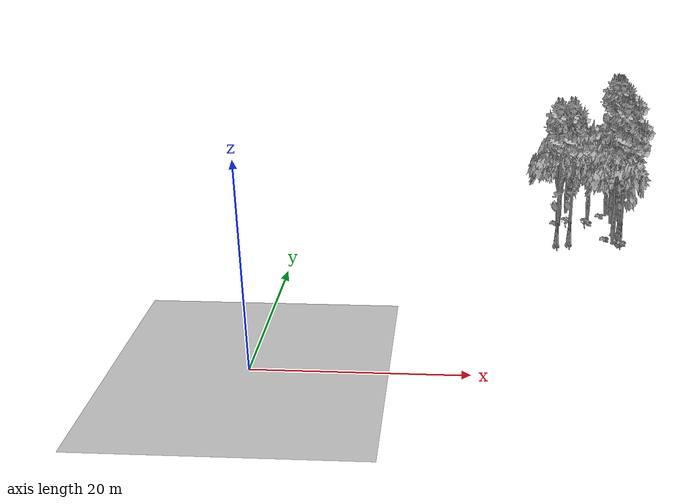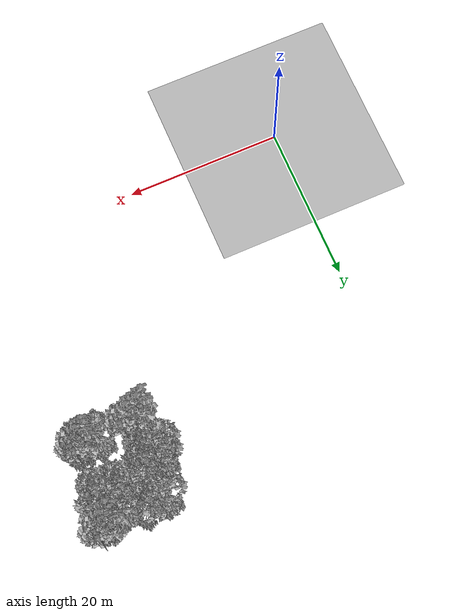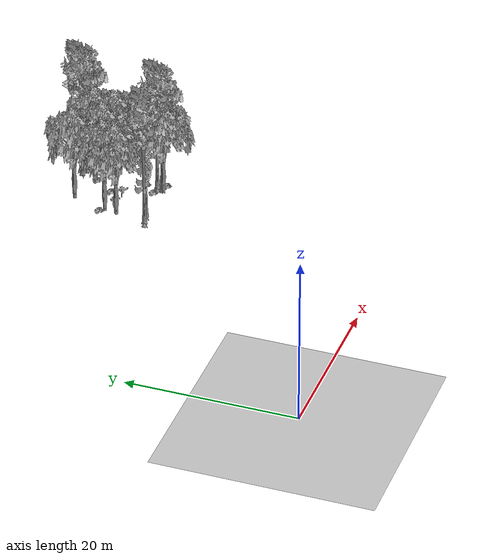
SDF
<sdf version="1.7">
 <world name="default">
  <model name="ground_plane">
   <static>1</static>
   <link name="link">
    <collision name="collision">
     <pose>-50 0 0 0 -0 0</pose>
     <geometry><plane><normal>0 0 1</normal><size>80 80</size></plane></geometry>
     <surface><contact><ode><min_depth>0.01</min_depth><max_vel>0</max_vel></ode></contact></surface>
    </collision>
    <visual name="grass">
     <cast_shadows>0</cast_shadows>
     <geometry>
      <mesh>
       <scale>0.46714285714285714 0.46714285714285714 0.1</scale>
       <uri>file://grass_plane/meshes/grass_plane.dae</uri>
      </mesh>
     </geometry>
    </visual>
   </link>
  </model>
  <model name="Tree 76">
   <static>1</static>
   <pose>37.84078261592019 39.57574011754254 0 1.57079 -0 0</pose>
   <link name="link">
    <collision name="collision">
     <geometry><mesh><scale>3.5 5 3.5</scale><uri>model://tree_9/meshes/tree_9.obj</uri></mesh></geometry>
    </collision>
    <visual name="visual">
     <geometry><mesh><scale>3.5 5 3.5</scale><uri>model://tree_9/meshes/tree_9.obj</uri></mesh></geometry>
    </visual>
   </link>
  </model>
  <model name="Tree 214">
   <static>1</static>
   <pose>32.02794555543984 38.27669907802715 0 1.57079 -0 0</pose>
   <link name="link">
    <collision name="collision">
     <geometry><mesh><scale>3.5 5 3.5</scale><uri>model://tree_2/meshes/tree_2.obj</uri></mesh></geometry>
    </collision>
    <visual name="visual">
     <geometry><mesh><scale>3.5 5 3.5</scale><uri>model://tree_2/meshes/tree_2.obj</uri></mesh></geometry>
    </visual>
   </link>
  </model>
  <model name="Tree 232">
   <static>1</static>
   <pose>36.550184397444426 29.031780298580884 0 1.57079 -0 0</pose>
   <link name="link">
    <collision name="collision">
     <geometry><mesh><scale>3.5 5 3.5</scale><uri>model://tree_2/meshes/tree_2.obj</uri></mesh></geometry>
    </collision>
    <visual name="visual">
     <geometry><mesh><scale>3.5 5 3.5</scale><uri>model://tree_2/meshes/tree_2.obj</uri></mesh></geometry>
    </visual>
   </link>
  </model>
  <model name="Tree 261">
   <static>1</static>
   <pose>30.11895670866484 28.944738201392298 0 1.57079 -0 0</pose>
   <link name="link">
    <collision name="collision">
     <geometry><mesh><scale>3.5 5 3.5</scale><uri>model://tree_9/meshes/tree_9.obj</uri></mesh></geometry>
    </collision>
    <visual name="visual">
     <geometry><mesh><scale>3.5 5 3.5</scale><uri>model://tree_9/meshes/tree_9.obj</uri></mesh></geometry>
    </visual>
   </link>
  </model>
  <model name="Tree 270">
   <static>1</static>
   <pose>30.45902136684994 32.55655700902652 0 1.57079 -0 0</pose>
   <link name="link">
    <collision name="collision">
     <geometry><mesh><scale>3.5 5 3.5</scale><uri>model://tree_2/meshes/tree_2.obj</uri></mesh></geometry>
    </collision>
    <visual name="visual">
     <geometry><mesh><scale>3.5 5 3.5</scale><uri>model://tree_2/meshes/tree_2.obj</uri></mesh></geometry>
    </visual>
   </link>
  </model>
  <model name="Tree 288">
   <static>1</static>
   <pose>38.56831955158435 39.12446432485521 0 1.57079 -0 0</pose>
   <link name="link">
    <collision name="collision">
     <geometry><mesh><scale>3.5 5 3.5</scale><uri>model://tree_9/meshes/tree_9.obj</uri></mesh></geometry>
    </collision>
    <visual name="visual">
     <geometry><mesh><scale>3.5 5 3.5</scale><uri>model://tree_9/meshes/tree_9.obj</uri></mesh></geometry>
    </visual>
   </link>
  </model>
  <model name="Tree 347">
   <static>1</static>
   <pose>37.547553136468565 29.53052850713982 0 1.57079 -0 0</pose>
   <link name="link">
    <collision name="collision">
     <geometry><mesh><scale>3.5 5 3.5</scale><uri>model://tree_9/meshes/tree_9.obj</uri></mesh></geometry>
    </collision>
    <visual name="visual">
     <geometry><mesh><scale>3.5 5 3.5</scale><uri>model://tree_9/meshes/tree_9.obj</uri></mesh></geometry>
    </visual>
   </link>
  </model>
  <model name="Tree 351">
   <static>1</static>
   <pose>37.19855682632047 35.15756566981554 0 1.57079 -0 0</pose>
   <link name="link">
    <collision name="collision">
     <geometry><mesh><scale>3.5 5 3.5</scale><uri>model://tree_2/meshes/tree_2.obj</uri></mesh></geometry>
    </collision>
    <visual name="visual">
     <geometry><mesh><scale>3.5 5 3.5</scale><uri>model://tree_2/meshes/tree_2.obj</uri></mesh></geometry>
    </visual>
   </link>
  </model>
  <model name="Tree 398">
   <static>1</static>
   <pose>34.38800474693737 35.528196617972 0 1.57079 -0 0</pose>
   <link name="link">
    <collision name="collision">
     <geometry><mesh><scale>3.5 5 3.5</scale><uri>model://tree_2/meshes/tree_2.obj</uri></mesh></geometry>
    </collision>
    <visual name="visual">
     <geometry><mesh><scale>3.5 5 3.5</scale><uri>model://tree_2/meshes/tree_2.obj</uri></mesh></geometry>
    </visual>
   </link>
  </model>
  <model name="Tree 469">
   <static>1</static>
   <pose>37.408346305156414 30.06469248489242 0 1.57079 -0 0</pose>
   <link name="link">
    <collision name="collision">
     <geometry><mesh><scale>3.5 5 3.5</scale><uri>model://tree_9/meshes/tree_9.obj</uri></mesh></geometry>
    </collision>
    <visual name="visual">
     <geometry><mesh><scale>3.5 5 3.5</scale><uri>model://tree_9/meshes/tree_9.obj</uri></mesh></geometry>
    </visual>
   </link>
  </model>
  <model name="Tree 523">
   <static>1</static>
   <pose>31.601755322838414 29.332997033860067 0 1.57079 -0 0</pose>
   <link name="link">
    <collision name="collision">
     <geometry><mesh><scale>3.5 5 3.5</scale><uri>model://tree_9/meshes/tree_9.obj</uri></mesh></geometry>
    </collision>
    <visual name="visual">
     <geometry><mesh><scale>3.5 5 3.5</scale><uri>model://tree_9/meshes/tree_9.obj</uri></mesh></geometry>
    </visual>
   </link>
  </model>
  <model name="Tree 538">
   <static>1</static>
   <pose>30.758277042980183 34.07509828525778 0 1.57079 -0 0</pose>
   <link name="link">
    <collision name="collision">
     <geometry><mesh><scale>3.5 5 3.5</scale><uri>model://tree_2/meshes/tree_2.obj</uri></mesh></geometry>
    </collision>
    <visual name="visual">
     <geometry><mesh><scale>3.5 5 3.5</scale><uri>model://tree_2/meshes/tree_2.obj</uri></mesh></geometry>
    </visual>
   </link>
  </model>
  <model name="Tree 591">
   <static>1</static>
   <pose>38.442104934312155 39.828868555079225 0 1.57079 -0 0</pose>
   <link name="link">
    <collision name="collision">
     <geometry><mesh><scale>3.5 5 3.5</scale><uri>model://tree_9/meshes/tree_9.obj</uri></mesh></geometry>
    </collision>
    <visual name="visual">
     <geometry><mesh><scale>3.5 5 3.5</scale><uri>model://tree_9/meshes/tree_9.obj</uri></mesh></geometry>
    </visual>
   </link>
  </model>
  <model name="Tree 594">
   <static>1</static>
   <pose>36.879457543958736 37.57126870341848 0 1.57079 -0 0</pose>
   <link name="link">
    <collision name="collision">
     <geometry><mesh><scale>3.5 5 3.5</scale><uri>model://tree_2/meshes/tree_2.obj</uri></mesh></geometry>
    </collision>
    <visual name="visual">
     <geometry><mesh><scale>3.5 5 3.5</scale><uri>model://tree_2/meshes/tree_2.obj</uri></mesh></geometry>
    </visual>
   </link>
  </model>
  <model name="Bush 196">
   <static>1</static>
   <pose>37.69547096485397 28.981118280177 0 1.57079 -0 0</pose>
   <link name="link">
    <collision name="collision">
     <geometry><mesh><scale>2 2 2</scale><uri>model://bush_2/meshes/bush_2.obj</uri></mesh></geometry>
     <surface><contact><collide_without_contact>false</collide_without_contact></contact></surface>
    </collision>
    <visual name="visual">
     <geometry><mesh><scale>2 2 2</scale><uri>model://bush_2/meshes/bush_2.obj</uri></mesh></geometry>
    </visual>
   </link>
  </model>
  <model name="Bush 209">
   <static>1</static>
   <pose>35.83672736314507 30.02654470208769 0 1.57079 -0 0</pose>
   <link name="link">
    <collision name="collision">
     <geometry><mesh><scale>2 2 2</scale><uri>model://bush_2/meshes/bush_2.obj</uri></mesh></geometry>
     <surface><contact><collide_without_contact>false</collide_without_contact></contact></surface>
    </collision>
    <visual name="visual">
     <geometry><mesh><scale>2 2 2</scale><uri>model://bush_2/meshes/bush_2.obj</uri></mesh></geometry>
    </visual>
   </link>
  </model>
  <model name="Bush 289">
   <static>1</static>
   <pose>33.91604672003423 33.191702073015406 0 1.57079 -0 0</pose>
   <link name="link">
    <collision name="collision">
     <geometry><mesh><scale>2 2 2</scale><uri>model://bush_5/meshes/bush_5.obj</uri></mesh></geometry>
     <surface><contact><collide_without_contact>false</collide_without_contact></contact></surface>
    </collision>
    <visual name="visual">
     <geometry><mesh><scale>2 2 2</scale><uri>model://bush_5/meshes/bush_5.obj</uri></mesh></geometry>
    </visual>
   </link>
  </model>
  <model name="Bush 292">
   <static>1</static>
   <pose>37.1777030349447 31.33939369397983 0 1.57079 -0 0</pose>
   <link name="link">
    <collision name="collision">
     <geometry><mesh><scale>2 2 2</scale><uri>model://bush_2/meshes/bush_2.obj</uri></mesh></geometry>
     <surface><contact><collide_without_contact>false</collide_without_contact></contact></surface>
    </collision>
    <visual name="visual">
     <geometry><mesh><scale>2 2 2</scale><uri>model://bush_2/meshes/bush_2.obj</uri></mesh></geometry>
    </visual>
   </link>
  </model>
  <model name="Bush 397">
   <static>1</static>
   <pose>36.161516296149 37.092688552935954 0 1.57079 -0 0</pose>
   <link name="link">
    <collision name="collision">
     <geometry><mesh><scale>2 2 2</scale><uri>model://bush_2/meshes/bush_2.obj</uri></mesh></geometry>
     <surface><contact><collide_without_contact>false</collide_without_contact></contact></surface>
    </collision>
    <visual name="visual">
     <geometry><mesh><scale>2 2 2</scale><uri>model://bush_2/meshes/bush_2.obj</uri></mesh></geometry>
    </visual>
   </link>
  </model>
  <model name="Bush 399">
   <static>1</static>
   <pose>30.325941285717136 34.612612888719156 0 1.57079 -0 0</pose>
   <link name="link">
    <collision name="collision">
     <geometry><mesh><scale>2 2 2</scale><uri>model://bush_2/meshes/bush_2.obj</uri></mesh></geometry>
     <surface><contact><collide_without_contact>false</collide_without_contact></contact></surface>
    </collision>
    <visual name="visual">
     <geometry><mesh><scale>2 2 2</scale><uri>model://bush_2/meshes/bush_2.obj</uri></mesh></geometry>
    </visual>
   </link>
  </model>
  <model name="Bush 428">
   <static>1</static>
   <pose>34.41889104064933 34.739479975755046 0 1.57079 -0 0</pose>
   <link name="link">
    <collision name="collision">
     <geometry><mesh><scale>2 2 2</scale><uri>model://bush_2/meshes/bush_2.obj</uri></mesh></geometry>
     <surface><contact><collide_without_contact>false</collide_without_contact></contact></surface>
    </collision>
    <visual name="visual">
     <geometry><mesh><scale>2 2 2</scale><uri>model://bush_2/meshes/bush_2.obj</uri></mesh></geometry>
    </visual>
   </link>
  </model>
  <model name="Bush 495">
   <static>1</static>
   <pose>31.637443147872617 33.33692680626375 0 1.57079 -0 0</pose>
   <link name="link">
    <collision name="collision">
     <geometry><mesh><scale>2 2 2</scale><uri>model://bush_5/meshes/bush_5.obj</uri></mesh></geometry>
     <surface><contact><collide_without_contact>false</collide_without_contact></contact></surface>
    </collision>
    <visual name="visual">
     <geometry><mesh><scale>2 2 2</scale><uri>model://bush_5/meshes/bush_5.obj</uri></mesh></geometry>
    </visual>
   </link>
  </model>
  <model name="Bush 587">
   <static>1</static>
   <pose>38.162717036743686 36.306656561427275 0 1.57079 -0 0</pose>
   <link name="link">
    <collision name="collision">
     <geometry><mesh><scale>2 2 2</scale><uri>model://bush_2/meshes/bush_2.obj</uri></mesh></geometry>
     <surface><contact><collide_without_contact>false</collide_without_contact></contact></surface>
    </collision>
    <visual name="visual">
     <geometry><mesh><scale>2 2 2</scale><uri>model://bush_2/meshes/bush_2.obj</uri></mesh></geometry>
    </visual>
   </link>
  </model>
 </world>
</sdf>
